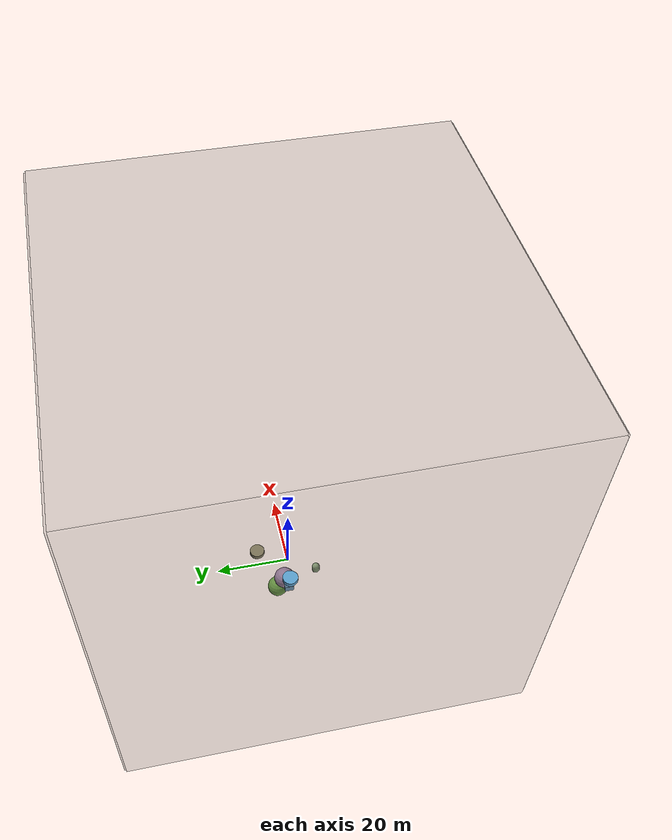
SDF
<!-- seed: 1718592691 -->
<sdf version='1.11'>
  <world name='world_0'>
    <gravity>0 0 -9.8066499999999994</gravity>
    <magnetic_field>5.5644999999999998e-06 2.2875799999999999e-05 -4.2388400000000002e-05</magnetic_field>
    <wind>
      <linear_velocity>8 6 8</linear_velocity>
    </wind>
    <physics default='false' type='ode'>
      <max_step_size>0.001</max_step_size>
      <real_time_factor>1</real_time_factor>
      <max_contacts>20</max_contacts>
    </physics>
    <model name='model_0'>
      <static>true</static>
      <self_collide>true</self_collide>
      <allow_auto_disable>true</allow_auto_disable>
      <enable_wind>true</enable_wind>
      <pose>-8.6262347075648158 5.1364948387115934 5.6344303808485741 0 0 0</pose>
      <link name='link_447'>
        <pose>-4.8702487070242606 -2.6410667547050011 1.9775154253390659 0 0 0</pose>
        <inertial>
          <pose>0 0 0 0 0 0</pose>
          <mass>1</mass>
          <inertia>
            <ixx>1</ixx>
            <ixy>0</ixy>
            <ixz>0</ixz>
            <iyy>1</iyy>
            <iyz>0</iyz>
            <izz>1</izz>
          </inertia>
        </inertial>
        <enable_wind>false</enable_wind>
        <collision name='collision_447'>
          <pose>0 0 0 0 0 0</pose>
          <geometry>
            <box>
              <size>1.0288651048134541 2.340356711353925 1.893131269194436</size>
            </box>
          </geometry>
          <surface>
            <contact>
              <collide_bitmask>255</collide_bitmask>
            </contact>
            <friction>
              <ode>
                <mu>1</mu>
                <mu2>1</mu2>
                <slip1>0</slip1>
                <slip2>0</slip2>
                <fdir1>0 0 0</fdir1>
              </ode>
            </friction>
          </surface>
        </collision>
        <visual name='visual_447'>
          <pose>0 0 0 0 0 0</pose>
          <geometry>
            <box>
              <size>1.0288651048134541 2.340356711353925 1.893131269194436</size>
            </box>
          </geometry>
          <cast_shadows>true</cast_shadows>
          <laser_retro>0</laser_retro>
          <transparency>0</transparency>
          <visibility_flags>4294967295</visibility_flags>
          <material>
            <ambient>0.498918325 0.675263703 0.813653708 1</ambient>
            <diffuse>0.498918325 0.675263703 0.813653708 1</diffuse>
            <specular>0 0 0 1</specular>
            <emissive>0 0 0 1</emissive>
            <render_order>0</render_order>
            <lighting>true</lighting>
            <double_sided>false</double_sided>
            <shader type='pixel'/>
          </material>
        </visual>
      </link>
      <link name='link_448'>
        <pose>7.9455018942876983 3.6999641600585793 2.1169584207083725 0 0 0</pose>
        <inertial>
          <pose>0 0 0 0 0 0</pose>
          <mass>1</mass>
          <inertia>
            <ixx>1</ixx>
            <ixy>0</ixy>
            <ixz>0</ixz>
            <iyy>1</iyy>
            <iyz>0</iyz>
            <izz>1</izz>
          </inertia>
        </inertial>
        <enable_wind>false</enable_wind>
        <collision name='collision_448'>
          <pose>0 0 0 0 0 0</pose>
          <geometry>
            <cylinder>
              <radius>1.9551233169789615</radius>
              <length>1.2167140132129863</length>
            </cylinder>
          </geometry>
          <surface>
            <contact>
              <collide_bitmask>255</collide_bitmask>
            </contact>
            <friction>
              <ode>
                <mu>1</mu>
                <mu2>1</mu2>
                <slip1>0</slip1>
                <slip2>0</slip2>
                <fdir1>0 0 0</fdir1>
              </ode>
            </friction>
          </surface>
        </collision>
        <visual name='visual_448'>
          <pose>0 0 0 0 0 0</pose>
          <geometry>
            <cylinder>
              <radius>1.9551233169789615</radius>
              <length>1.2167140132129863</length>
            </cylinder>
          </geometry>
          <cast_shadows>true</cast_shadows>
          <laser_retro>0</laser_retro>
          <transparency>0</transparency>
          <visibility_flags>4294967295</visibility_flags>
          <material>
            <ambient>0.573229194 0.535863101 0.404977888 1</ambient>
            <diffuse>0.573229194 0.535863101 0.404977888 1</diffuse>
            <specular>0 0 0 1</specular>
            <emissive>0 0 0 1</emissive>
            <render_order>0</render_order>
            <lighting>true</lighting>
            <double_sided>false</double_sided>
            <shader type='pixel'/>
          </material>
        </visual>
      </link>
      <link name='link_449'>
        <pose>-6.6791162766071981 -2.5905154180790753 9.2024442186046169 0 0 0</pose>
        <inertial>
          <pose>0 0 0 0 0 0</pose>
          <mass>1</mass>
          <inertia>
            <ixx>1</ixx>
            <ixy>0</ixy>
            <ixz>0</ixz>
            <iyy>1</iyy>
            <iyz>0</iyz>
            <izz>1</izz>
          </inertia>
        </inertial>
        <enable_wind>false</enable_wind>
        <collision name='collision_449'>
          <pose>0 0 0 0 0 0</pose>
          <geometry>
            <cylinder>
              <radius>2.0506753364068513</radius>
              <length>1.2372116665535708</length>
            </cylinder>
          </geometry>
          <surface>
            <contact>
              <collide_bitmask>255</collide_bitmask>
            </contact>
            <friction>
              <ode>
                <mu>1</mu>
                <mu2>1</mu2>
                <slip1>0</slip1>
                <slip2>0</slip2>
                <fdir1>0 0 0</fdir1>
              </ode>
            </friction>
          </surface>
        </collision>
        <visual name='visual_449'>
          <pose>0 0 0 0 0 0</pose>
          <geometry>
            <cylinder>
              <radius>2.0506753364068513</radius>
              <length>1.2372116665535708</length>
            </cylinder>
          </geometry>
          <cast_shadows>true</cast_shadows>
          <laser_retro>0</laser_retro>
          <transparency>0</transparency>
          <visibility_flags>4294967295</visibility_flags>
          <material>
            <ambient>0.41228354 0.746325612 0.964926302 1</ambient>
            <diffuse>0.41228354 0.746325612 0.964926302 1</diffuse>
            <specular>0 0 0 1</specular>
            <emissive>0 0 0 1</emissive>
            <render_order>0</render_order>
            <lighting>true</lighting>
            <double_sided>false</double_sided>
            <shader type='pixel'/>
          </material>
        </visual>
      </link>
      <joint name='joint_298' type='gearbox'>
        <pose>0 0 0 0 0 0</pose>
        <parent>link_447</parent>
        <child>link_448</child>
        <axis>
          <xyz>0.38021165329293383 0.43556633372592274 0.81591731665948364</xyz>
          <limit>
            <lower>-inf</lower>
            <upper>inf</upper>
            <effort>inf</effort>
            <velocity>5.565129234301363</velocity>
            <stiffness>100000000</stiffness>
            <dissipation>1</dissipation>
          </limit>
          <dynamics>
            <spring_reference>0</spring_reference>
            <spring_stiffness>0</spring_stiffness>
            <damping>0</damping>
            <friction>0</friction>
          </dynamics>
        </axis>
        <axis2>
          <xyz>0.87482012225157313 0.46078120482297552 0.14956749307797357</xyz>
          <limit>
            <lower>-inf</lower>
            <upper>inf</upper>
            <effort>inf</effort>
            <velocity>8.2881810950460881</velocity>
            <stiffness>100000000</stiffness>
            <dissipation>1</dissipation>
          </limit>
          <dynamics>
            <spring_reference>0</spring_reference>
            <spring_stiffness>0</spring_stiffness>
            <damping>0</damping>
            <friction>0</friction>
          </dynamics>
        </axis2>
      </joint>
      <joint name='joint_299' type='revolute'>
        <pose>0 0 0 0 0 0</pose>
        <parent>link_448</parent>
        <child>link_447</child>
        <axis>
          <xyz>0.63950116626644193 0.7603687287268015 0.11347975466244375</xyz>
          <limit>
            <lower>-inf</lower>
            <upper>inf</upper>
            <effort>inf</effort>
            <velocity>2.5874202127212556</velocity>
            <stiffness>100000000</stiffness>
            <dissipation>1</dissipation>
          </limit>
          <dynamics>
            <spring_reference>0</spring_reference>
            <spring_stiffness>0</spring_stiffness>
            <damping>0</damping>
            <friction>0</friction>
          </dynamics>
        </axis>
        <axis2>
          <xyz>0.61461785709489503 0.29154476880810393 0.73297103457142732</xyz>
          <limit>
            <lower>-inf</lower>
            <upper>inf</upper>
            <effort>inf</effort>
            <velocity>7.5940243170640001</velocity>
            <stiffness>100000000</stiffness>
            <dissipation>1</dissipation>
          </limit>
          <dynamics>
            <spring_reference>0</spring_reference>
            <spring_stiffness>0</spring_stiffness>
            <damping>0</damping>
            <friction>0</friction>
          </dynamics>
        </axis2>
      </joint>
    </model>
    <model name='model_1'>
      <static>true</static>
      <self_collide>true</self_collide>
      <allow_auto_disable>true</allow_auto_disable>
      <enable_wind>false</enable_wind>
      <pose>-4.0762294153957335 4.4645543375774857 1.6053912551610394 0 0 0</pose>
      <link name='link_450'>
        <pose>-7.1735876248865571 -9.7280403519826635 9.7960060253811303 0 0 0</pose>
        <inertial>
          <pose>0 0 0 0 0 0</pose>
          <mass>1</mass>
          <inertia>
            <ixx>1</ixx>
            <ixy>0</ixy>
            <ixz>0</ixz>
            <iyy>1</iyy>
            <iyz>0</iyz>
            <izz>1</izz>
          </inertia>
        </inertial>
        <enable_wind>false</enable_wind>
        <collision name='collision_450'>
          <pose>0 0 0 0 0 0</pose>
          <geometry>
            <capsule>
              <radius>1.0435380891153934</radius>
              <length>1.0015876404474089</length>
            </capsule>
          </geometry>
          <surface>
            <contact>
              <collide_bitmask>255</collide_bitmask>
            </contact>
            <friction>
              <ode>
                <mu>1</mu>
                <mu2>1</mu2>
                <slip1>0</slip1>
                <slip2>0</slip2>
                <fdir1>0 0 0</fdir1>
              </ode>
            </friction>
          </surface>
        </collision>
        <visual name='visual_450'>
          <pose>0 0 0 0 0 0</pose>
          <geometry>
            <capsule>
              <radius>1.0435380891153934</radius>
              <length>1.0015876404474089</length>
            </capsule>
          </geometry>
          <cast_shadows>true</cast_shadows>
          <laser_retro>0</laser_retro>
          <transparency>0</transparency>
          <visibility_flags>4294967295</visibility_flags>
          <material>
            <ambient>0.584581494 0.667243481 0.501202106 1</ambient>
            <diffuse>0.584581494 0.667243481 0.501202106 1</diffuse>
            <specular>0 0 0 1</specular>
            <emissive>0 0 0 1</emissive>
            <render_order>0</render_order>
            <lighting>true</lighting>
            <double_sided>false</double_sided>
            <shader type='pixel'/>
          </material>
        </visual>
      </link>
      <link name='link_451'>
        <pose>-6.10288616446371 -1.3963959553575549 5.8806680878737714 0 0 0</pose>
        <inertial>
          <pose>0 0 0 0 0 0</pose>
          <mass>1</mass>
          <inertia>
            <ixx>1</ixx>
            <ixy>0</ixy>
            <ixz>0</ixz>
            <iyy>1</iyy>
            <iyz>0</iyz>
            <izz>1</izz>
          </inertia>
        </inertial>
        <enable_wind>false</enable_wind>
        <collision name='collision_451'>
          <pose>0 0 0 0 0 0</pose>
          <geometry>
            <sphere>
              <radius>2.7629889672160699</radius>
            </sphere>
          </geometry>
          <surface>
            <contact>
              <collide_bitmask>255</collide_bitmask>
            </contact>
            <friction>
              <ode>
                <mu>1</mu>
                <mu2>1</mu2>
                <slip1>0</slip1>
                <slip2>0</slip2>
                <fdir1>0 0 0</fdir1>
              </ode>
            </friction>
          </surface>
        </collision>
        <visual name='visual_451'>
          <pose>0 0 0 0 0 0</pose>
          <geometry>
            <sphere>
              <radius>2.7629889672160699</radius>
            </sphere>
          </geometry>
          <cast_shadows>true</cast_shadows>
          <laser_retro>0</laser_retro>
          <transparency>0</transparency>
          <visibility_flags>4294967295</visibility_flags>
          <material>
            <ambient>0.67731303 0.553971171 0.679803908 1</ambient>
            <diffuse>0.67731303 0.553971171 0.679803908 1</diffuse>
            <specular>0 0 0 1</specular>
            <emissive>0 0 0 1</emissive>
            <render_order>0</render_order>
            <lighting>true</lighting>
            <double_sided>false</double_sided>
            <shader type='pixel'/>
          </material>
        </visual>
      </link>
      <link name='link_452'>
        <pose>-6.2574684537889009 0.51966006195683789 2.4781037367145 0 0 0</pose>
        <inertial>
          <pose>0 0 0 0 0 0</pose>
          <mass>1</mass>
          <inertia>
            <ixx>1</ixx>
            <ixy>0</ixy>
            <ixz>0</ixz>
            <iyy>1</iyy>
            <iyz>0</iyz>
            <izz>1</izz>
          </inertia>
        </inertial>
        <enable_wind>false</enable_wind>
        <collision name='collision_452'>
          <pose>0 0 0 0 0 0</pose>
          <geometry>
            <sphere>
              <radius>2.6895047347207859</radius>
            </sphere>
          </geometry>
          <surface>
            <contact>
              <collide_bitmask>255</collide_bitmask>
            </contact>
            <friction>
              <ode>
                <mu>1</mu>
                <mu2>1</mu2>
                <slip1>0</slip1>
                <slip2>0</slip2>
                <fdir1>0 0 0</fdir1>
              </ode>
            </friction>
          </surface>
        </collision>
        <visual name='visual_452'>
          <pose>0 0 0 0 0 0</pose>
          <geometry>
            <sphere>
              <radius>2.6895047347207859</radius>
            </sphere>
          </geometry>
          <cast_shadows>true</cast_shadows>
          <laser_retro>0</laser_retro>
          <transparency>0</transparency>
          <visibility_flags>4294967295</visibility_flags>
          <material>
            <ambient>0.471037298 0.68012625 0.298151493 1</ambient>
            <diffuse>0.471037298 0.68012625 0.298151493 1</diffuse>
            <specular>0 0 0 1</specular>
            <emissive>0 0 0 1</emissive>
            <render_order>0</render_order>
            <lighting>true</lighting>
            <double_sided>false</double_sided>
            <shader type='pixel'/>
          </material>
        </visual>
      </link>
      <joint name='joint_300' type='continuous'>
        <pose>0 0 0 0 0 0</pose>
        <parent>link_450</parent>
        <child>link_451</child>
        <axis>
          <xyz>0.58745594264617562 0.56587386230532088 0.57851731815854224</xyz>
          <limit>
            <lower>-inf</lower>
            <upper>inf</upper>
            <effort>inf</effort>
            <velocity>9.107720873395289</velocity>
            <stiffness>100000000</stiffness>
            <dissipation>1</dissipation>
          </limit>
          <dynamics>
            <spring_reference>0</spring_reference>
            <spring_stiffness>0</spring_stiffness>
            <damping>0</damping>
            <friction>0</friction>
          </dynamics>
        </axis>
        <axis2>
          <xyz>0.2187492513723179 0.64535574760723313 0.73189119686901527</xyz>
          <limit>
            <lower>-inf</lower>
            <upper>inf</upper>
            <effort>inf</effort>
            <velocity>7.1250102685850161</velocity>
            <stiffness>100000000</stiffness>
            <dissipation>1</dissipation>
          </limit>
          <dynamics>
            <spring_reference>0</spring_reference>
            <spring_stiffness>0</spring_stiffness>
            <damping>0</damping>
            <friction>0</friction>
          </dynamics>
        </axis2>
      </joint>
      <joint name='joint_301' type='gearbox'>
        <pose>0 0 0 0 0 0</pose>
        <parent>link_452</parent>
        <child>link_451</child>
        <axis>
          <xyz>0.77493114255605622 0.20136034712266607 0.59911245597417251</xyz>
          <limit>
            <lower>-inf</lower>
            <upper>inf</upper>
            <effort>inf</effort>
            <velocity>0.30681624780715233</velocity>
            <stiffness>100000000</stiffness>
            <dissipation>1</dissipation>
          </limit>
          <dynamics>
            <spring_reference>0</spring_reference>
            <spring_stiffness>0</spring_stiffness>
            <damping>0</damping>
            <friction>0</friction>
          </dynamics>
        </axis>
        <axis2>
          <xyz>0.32192471293873876 0.88805782206813144 0.32820387545383661</xyz>
          <limit>
            <lower>-inf</lower>
            <upper>inf</upper>
            <effort>inf</effort>
            <velocity>3.4553672819704384</velocity>
            <stiffness>100000000</stiffness>
            <dissipation>1</dissipation>
          </limit>
          <dynamics>
            <spring_reference>0</spring_reference>
            <spring_stiffness>0</spring_stiffness>
            <damping>0</damping>
            <friction>0</friction>
          </dynamics>
        </axis2>
      </joint>
    </model>
    <model name='ground_model'>
      <static>true</static>
      <self_collide>false</self_collide>
      <allow_auto_disable>true</allow_auto_disable>
      <enable_wind>false</enable_wind>
      <pose>0 0 0 0 0 0</pose>
      <link name='ground_link'>
        <pose>0 0 0 0 0 0</pose>
        <inertial>
          <pose>0 0 0 0 0 0</pose>
          <mass>1</mass>
          <inertia>
            <ixx>1</ixx>
            <ixy>0</ixy>
            <ixz>0</ixz>
            <iyy>1</iyy>
            <iyz>0</iyz>
            <izz>1</izz>
          </inertia>
        </inertial>
        <enable_wind>false</enable_wind>
        <collision name='ground_collision'>
          <pose>0 0 0 0 0 0</pose>
          <geometry>
            <plane>
              <normal>0 0 1</normal>
              <size>100 100</size>
            </plane>
          </geometry>
          <surface>
            <contact>
              <collide_bitmask>255</collide_bitmask>
            </contact>
            <friction>
              <ode>
                <mu>1</mu>
                <mu2>1</mu2>
                <slip1>0</slip1>
                <slip2>0</slip2>
                <fdir1>0 0 0</fdir1>
              </ode>
            </friction>
          </surface>
        </collision>
      </link>
    </model>
    <model name='ceiling_model'>
      <static>true</static>
      <self_collide>false</self_collide>
      <allow_auto_disable>true</allow_auto_disable>
      <enable_wind>false</enable_wind>
      <pose>0 0 100 0 0 0</pose>
      <link name='ceiling_link'>
        <pose>0 0 0 0 0 0</pose>
        <inertial>
          <pose>0 0 0 0 0 0</pose>
          <mass>1</mass>
          <inertia>
            <ixx>1</ixx>
            <ixy>0</ixy>
            <ixz>0</ixz>
            <iyy>1</iyy>
            <iyz>0</iyz>
            <izz>1</izz>
          </inertia>
        </inertial>
        <enable_wind>false</enable_wind>
        <collision name='ceiling_collision'>
          <pose>0 0 0 0 0 0</pose>
          <geometry>
            <box>
              <size>102 102 3</size>
            </box>
          </geometry>
          <surface>
            <contact>
              <collide_bitmask>255</collide_bitmask>
            </contact>
            <friction>
              <ode>
                <mu>1</mu>
                <mu2>1</mu2>
                <slip1>0</slip1>
                <slip2>0</slip2>
                <fdir1>0 0 0</fdir1>
              </ode>
            </friction>
          </surface>
        </collision>
        <visual name='ceiling_visual'>
          <pose>0 0 0 0 0 0</pose>
          <geometry>
            <box>
              <size>102 102 3</size>
            </box>
          </geometry>
          <cast_shadows>true</cast_shadows>
          <laser_retro>0</laser_retro>
          <transparency>0</transparency>
          <visibility_flags>4294967295</visibility_flags>
          <material>
            <ambient>0.200000003 0.200000003 0.200000003 0.200000003</ambient>
            <diffuse>0.200000003 0.200000003 0.200000003 0.200000003</diffuse>
            <specular>0 0 0 1</specular>
            <emissive>0 0 0 1</emissive>
            <render_order>0</render_order>
            <lighting>true</lighting>
            <double_sided>false</double_sided>
            <shader type='pixel'/>
          </material>
        </visual>
      </link>
    </model>
    <model name='west_model'>
      <static>true</static>
      <self_collide>false</self_collide>
      <allow_auto_disable>true</allow_auto_disable>
      <enable_wind>false</enable_wind>
      <pose>0 50 50 0 0 0</pose>
      <link name='west_link'>
        <pose>0 0 0 0 0 0</pose>
        <inertial>
          <pose>0 0 0 0 0 0</pose>
          <mass>1</mass>
          <inertia>
            <ixx>1</ixx>
            <ixy>0</ixy>
            <ixz>0</ixz>
            <iyy>1</iyy>
            <iyz>0</iyz>
            <izz>1</izz>
          </inertia>
        </inertial>
        <enable_wind>false</enable_wind>
        <collision name='west_collision'>
          <pose>0 0 0 0 0 0</pose>
          <geometry>
            <box>
              <size>102 3 102</size>
            </box>
          </geometry>
          <surface>
            <contact>
              <collide_bitmask>255</collide_bitmask>
            </contact>
            <friction>
              <ode>
                <mu>1</mu>
                <mu2>1</mu2>
                <slip1>0</slip1>
                <slip2>0</slip2>
                <fdir1>0 0 0</fdir1>
              </ode>
            </friction>
          </surface>
        </collision>
        <visual name='west_visual'>
          <pose>0 0 0 0 0 0</pose>
          <geometry>
            <box>
              <size>102 3 102</size>
            </box>
          </geometry>
          <cast_shadows>true</cast_shadows>
          <laser_retro>0</laser_retro>
          <transparency>0</transparency>
          <visibility_flags>4294967295</visibility_flags>
          <material>
            <ambient>0.200000003 0.200000003 0.200000003 0.200000003</ambient>
            <diffuse>0.200000003 0.200000003 0.200000003 0.200000003</diffuse>
            <specular>0 0 0 1</specular>
            <emissive>0 0 0 1</emissive>
            <render_order>0</render_order>
            <lighting>true</lighting>
            <double_sided>false</double_sided>
            <shader type='pixel'/>
          </material>
        </visual>
      </link>
    </model>
    <model name='east_model'>
      <static>true</static>
      <self_collide>false</self_collide>
      <allow_auto_disable>true</allow_auto_disable>
      <enable_wind>false</enable_wind>
      <pose>0 -50 50 0 0 0</pose>
      <link name='east_link'>
        <pose>0 0 0 0 0 0</pose>
        <inertial>
          <pose>0 0 0 0 0 0</pose>
          <mass>1</mass>
          <inertia>
            <ixx>1</ixx>
            <ixy>0</ixy>
            <ixz>0</ixz>
            <iyy>1</iyy>
            <iyz>0</iyz>
            <izz>1</izz>
          </inertia>
        </inertial>
        <enable_wind>false</enable_wind>
        <collision name='east_collision'>
          <pose>0 0 0 0 0 0</pose>
          <geometry>
            <box>
              <size>102 3 102</size>
            </box>
          </geometry>
          <surface>
            <contact>
              <collide_bitmask>255</collide_bitmask>
            </contact>
            <friction>
              <ode>
                <mu>1</mu>
                <mu2>1</mu2>
                <slip1>0</slip1>
                <slip2>0</slip2>
                <fdir1>0 0 0</fdir1>
              </ode>
            </friction>
          </surface>
        </collision>
        <visual name='east_visual'>
          <pose>0 0 0 0 0 0</pose>
          <geometry>
            <box>
              <size>102 3 102</size>
            </box>
          </geometry>
          <cast_shadows>true</cast_shadows>
          <laser_retro>0</laser_retro>
          <transparency>0</transparency>
          <visibility_flags>4294967295</visibility_flags>
          <material>
            <ambient>0.200000003 0.200000003 0.200000003 0.200000003</ambient>
            <diffuse>0.200000003 0.200000003 0.200000003 0.200000003</diffuse>
            <specular>0 0 0 1</specular>
            <emissive>0 0 0 1</emissive>
            <render_order>0</render_order>
            <lighting>true</lighting>
            <double_sided>false</double_sided>
            <shader type='pixel'/>
          </material>
        </visual>
      </link>
    </model>
    <model name='north_model'>
      <static>true</static>
      <self_collide>false</self_collide>
      <allow_auto_disable>true</allow_auto_disable>
      <enable_wind>false</enable_wind>
      <pose>50 0 50 0 0 0</pose>
      <link name='north_link'>
        <pose>0 0 0 0 0 0</pose>
        <inertial>
          <pose>0 0 0 0 0 0</pose>
          <mass>1</mass>
          <inertia>
            <ixx>1</ixx>
            <ixy>0</ixy>
            <ixz>0</ixz>
            <iyy>1</iyy>
            <iyz>0</iyz>
            <izz>1</izz>
          </inertia>
        </inertial>
        <enable_wind>false</enable_wind>
        <collision name='north_collision'>
          <pose>0 0 0 0 0 0</pose>
          <geometry>
            <box>
              <size>3 102 102</size>
            </box>
          </geometry>
          <surface>
            <contact>
              <collide_bitmask>255</collide_bitmask>
            </contact>
            <friction>
              <ode>
                <mu>1</mu>
                <mu2>1</mu2>
                <slip1>0</slip1>
                <slip2>0</slip2>
                <fdir1>0 0 0</fdir1>
              </ode>
            </friction>
          </surface>
        </collision>
        <visual name='north_visual'>
          <pose>0 0 0 0 0 0</pose>
          <geometry>
            <box>
              <size>3 102 102</size>
            </box>
          </geometry>
          <cast_shadows>true</cast_shadows>
          <laser_retro>0</laser_retro>
          <transparency>0</transparency>
          <visibility_flags>4294967295</visibility_flags>
          <material>
            <ambient>0.200000003 0.200000003 0.200000003 0.200000003</ambient>
            <diffuse>0.200000003 0.200000003 0.200000003 0.200000003</diffuse>
            <specular>0 0 0 1</specular>
            <emissive>0 0 0 1</emissive>
            <render_order>0</render_order>
            <lighting>true</lighting>
            <double_sided>false</double_sided>
            <shader type='pixel'/>
          </material>
        </visual>
      </link>
    </model>
    <model name='south_model'>
      <static>true</static>
      <self_collide>false</self_collide>
      <allow_auto_disable>true</allow_auto_disable>
      <enable_wind>false</enable_wind>
      <pose>-50 0 50 0 0 0</pose>
      <link name='south_link'>
        <pose>0 0 0 0 0 0</pose>
        <inertial>
          <pose>0 0 0 0 0 0</pose>
          <mass>1</mass>
          <inertia>
            <ixx>1</ixx>
            <ixy>0</ixy>
            <ixz>0</ixz>
            <iyy>1</iyy>
            <iyz>0</iyz>
            <izz>1</izz>
          </inertia>
        </inertial>
        <enable_wind>false</enable_wind>
        <collision name='south_collision'>
          <pose>0 0 0 0 0 0</pose>
          <geometry>
            <box>
              <size>3 102 102</size>
            </box>
          </geometry>
          <surface>
            <contact>
              <collide_bitmask>255</collide_bitmask>
            </contact>
            <friction>
              <ode>
                <mu>1</mu>
                <mu2>1</mu2>
                <slip1>0</slip1>
                <slip2>0</slip2>
                <fdir1>0 0 0</fdir1>
              </ode>
            </friction>
          </surface>
        </collision>
        <visual name='south_visual'>
          <pose>0 0 0 0 0 0</pose>
          <geometry>
            <box>
              <size>3 102 102</size>
            </box>
          </geometry>
          <cast_shadows>true</cast_shadows>
          <laser_retro>0</laser_retro>
          <transparency>0</transparency>
          <visibility_flags>4294967295</visibility_flags>
          <material>
            <ambient>0.200000003 0.200000003 0.200000003 0.200000003</ambient>
            <diffuse>0.200000003 0.200000003 0.200000003 0.200000003</diffuse>
            <specular>0 0 0 1</specular>
            <emissive>0 0 0 1</emissive>
            <render_order>0</render_order>
            <lighting>true</lighting>
            <double_sided>false</double_sided>
            <shader type='pixel'/>
          </material>
        </visual>
      </link>
    </model>
    <atmosphere type='adiabatic'>
      <temperature>288.14999999999998</temperature>
      <pressure>101325</pressure>
      <temperature_gradient>-0.0064999999999999997</temperature_gradient>
    </atmosphere>
    <scene>
      <ambient>0.400000006 0.400000006 0.400000006 1</ambient>
      <background>0.699999988 0.699999988 0.699999988 1</background>
      <grid>true</grid>
      <origin_visual>true</origin_visual>
      <shadows>true</shadows>
    </scene>
  </world>
</sdf>
